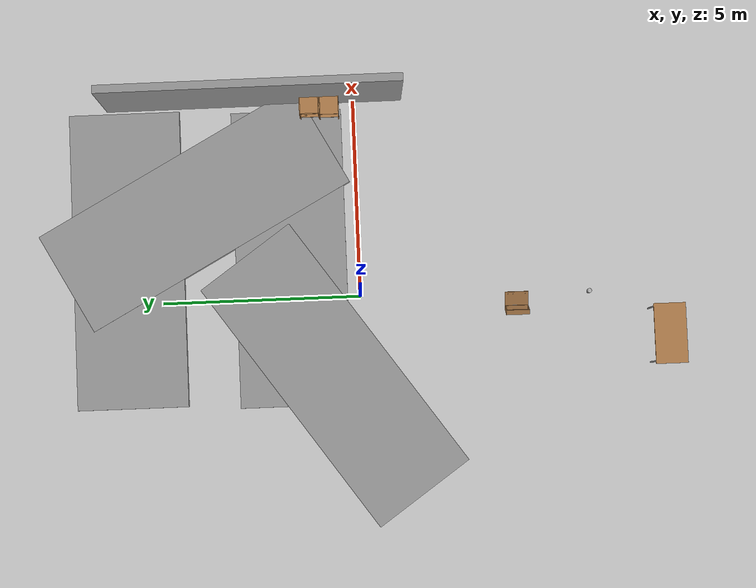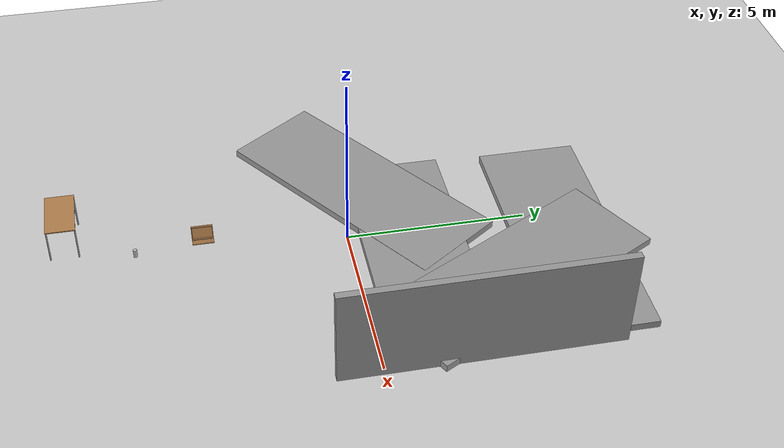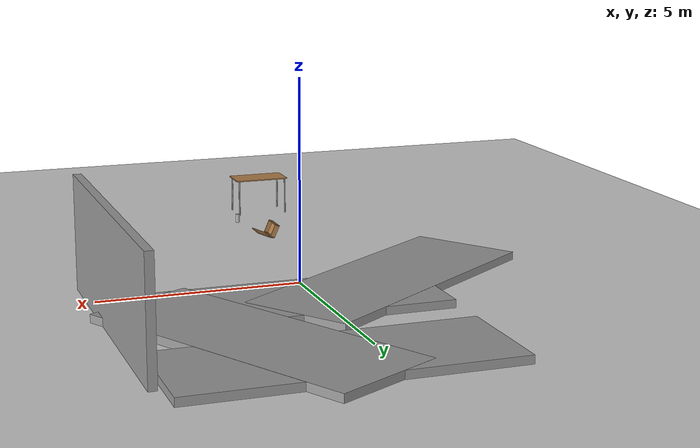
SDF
<sdf version="1.6">
 <world name="default">
  <light name="sun" type="directional">
   <pose>0 0 15 0 -0 0</pose>
   <diffuse>0.8 0.8 0.8 1</diffuse>
   <specular>0.2 0.2 0.2 1</specular>
   <attenuation>
    <range>1000</range>
    <constant>0.9</constant>
    <linear>0.01</linear>
    <quadratic>0.001</quadratic>
   </attenuation>
   <direction>-0.5 0.1 -0.9</direction>
  </light>
  <model name="ground_plane">
   <static>1</static>
   <link name="link">
    <collision name="collision">
     <geometry><plane><normal>0 0 1</normal><size>100 100</size></plane></geometry>
     <surface><friction><ode><mu>100</mu><mu2>50</mu2></ode></friction></surface>
    </collision>
    <visual name="visual">
     <cast_shadows>0</cast_shadows>
     <geometry><plane><normal>0 0 1</normal><size>100 100</size></plane></geometry>
     <material>
      <script><uri>file://media/materials/scripts/gazebo.material</uri><name>Gazebo/Grey</name></script>
     </material>
    </visual>
   </link>
  </model>
  <gravity>0 0 -9.8</gravity>
  <magnetic_field>6e-06 2.3e-05 -4.2e-05</magnetic_field>
  <atmosphere type="adiabatic"/>
  <physics name="default_physics" default="0" type="ode">
   <max_step_size>0.001</max_step_size>
   <real_time_factor>1</real_time_factor>
   <real_time_update_rate>1000</real_time_update_rate>
  </physics>
  <scene><ambient>0.4 0.4 0.4 1</ambient><background>0.7 0.7 0.7 1</background><shadows>1</shadows></scene>
  <spherical_coordinates>
   <surface_model>EARTH_WGS84</surface_model>
   <latitude_deg>0</latitude_deg>
   <longitude_deg>0</longitude_deg>
   <elevation>0</elevation>
   <heading_deg>0</heading_deg>
  </spherical_coordinates>
  <model name="beer">
   <link name="link">
    <pose>0 0 0.115 0 -0 0</pose>
    <inertial>
     <mass>0.39</mass>
     <inertia><ixx>0.00058</ixx><ixy>0</ixy><ixz>0</ixz><iyy>0.00058</iyy><iyz>0</iyz><izz>0.00019</izz></inertia>
    </inertial>
    <collision name="collision">
     <geometry><cylinder><radius>0.055</radius><length>0.23</length></cylinder></geometry>
    </collision>
    <visual name="visual">
     <geometry><cylinder><radius>0.055</radius><length>0.23</length></cylinder></geometry>
     <material>
      <script>
       <uri>model://beer/materials/scripts</uri>
       <uri>model://beer/materials/textures</uri>
       <name>Beer/Diffuse</name>
      </script>
     </material>
    </visual>
   </link>
   <pose>-0.097689 -5.77367 0.189801 1.6e-05 -4e-06 -0.000374</pose>
  </model>
  <model name="table">
   <static>1</static>
   <link name="link">
    <collision name="surface">
     <pose>0 0 1 0 -0 0</pose>
     <geometry><box><size>1.5 0.8 0.03</size></box></geometry>
     <surface><friction><ode><mu>0.6</mu><mu2>0.6</mu2></ode></friction></surface>
    </collision>
    <visual name="visual1">
     <pose>0 0 1 0 -0 0</pose>
     <geometry><box><size>1.5 0.8 0.03</size></box></geometry>
     <material>
      <script><uri>file://media/materials/scripts/gazebo.material</uri><name>Gazebo/Wood</name></script>
     </material>
    </visual>
    <collision name="front_left_leg">
     <pose>0.68 0.38 0.5 0 -0 0</pose>
     <geometry><cylinder><radius>0.02</radius><length>1</length></cylinder></geometry>
    </collision>
    <visual name="front_left_leg">
     <pose>0.68 0.38 0.5 0 -0 0</pose>
     <geometry><cylinder><radius>0.02</radius><length>1</length></cylinder></geometry>
     <material>
      <script><uri>file://media/materials/scripts/gazebo.material</uri><name>Gazebo/Grey</name></script>
     </material>
    </visual>
    <collision name="front_right_leg">
     <pose>0.68 -0.38 0.5 0 -0 0</pose>
     <geometry><cylinder><radius>0.02</radius><length>1</length></cylinder></geometry>
    </collision>
    <visual name="front_right_leg">
     <pose>0.68 -0.38 0.5 0 -0 0</pose>
     <geometry><cylinder><radius>0.02</radius><length>1</length></cylinder></geometry>
     <material>
      <script><uri>file://media/materials/scripts/gazebo.material</uri><name>Gazebo/Grey</name></script>
     </material>
    </visual>
    <collision name="back_right_leg">
     <pose>-0.68 -0.38 0.5 0 -0 0</pose>
     <geometry><cylinder><radius>0.02</radius><length>1</length></cylinder></geometry>
    </collision>
    <visual name="back_right_leg">
     <pose>-0.68 -0.38 0.5 0 -0 0</pose>
     <geometry><cylinder><radius>0.02</radius><length>1</length></cylinder></geometry>
     <material>
      <script><uri>file://media/materials/scripts/gazebo.material</uri><name>Gazebo/Grey</name></script>
     </material>
    </visual>
    <collision name="back_left_leg">
     <pose>-0.68 0.38 0.5 0 -0 0</pose>
     <geometry><cylinder><radius>0.02</radius><length>1</length></cylinder></geometry>
    </collision>
    <visual name="back_left_leg">
     <pose>-0.68 0.38 0.5 0 -0 0</pose>
     <geometry><cylinder><radius>0.02</radius><length>1</length></cylinder></geometry>
     <material>
      <script><uri>file://media/materials/scripts/gazebo.material</uri><name>Gazebo/Grey</name></script>
     </material>
    </visual>
   </link>
   <pose>-1.26954 -7.66103 0 0 -0 0</pose>
  </model>
  <model name="wooden_case">
   <link name="base">
    <pose>0 0 0.024 0 -0 0</pose>
    <inertial>
     <pose>-0.022184 0 0.171592 0 -0 0</pose>
     <mass>3.96264</mass>
     <inertia>
      <ixx>0.213536</ixx>
      <ixy>0</ixy>
      <ixz>0.000779377</ixz>
      <iyy>0.0708943</iyy>
      <iyz>0</iyz>
      <izz>0.154604</izz>
     </inertia>
    </inertial>
    <collision name="collision_back">
     <pose>-0.053975 0 0.1778 0 -0 0</pose>
     <geometry><box><size>0.01905 0.5461 0.3175</size></box></geometry>
     <surface>
      <contact>
       <poissons_ratio>0.347</poissons_ratio>
       <elastic_modulus>8.8e+09</elastic_modulus>
       <ode><kp>100000</kp><kd>100</kd><max_vel>100</max_vel><min_depth>0.001</min_depth></ode>
      </contact>
      <friction>
       <torsional>
        <coefficient>1</coefficient>
        <use_patch_radius>0</use_patch_radius>
        <surface_radius>0.01</surface_radius>
       </torsional>
      </friction>
     </surface>
    </collision>
    <visual name="visual_back">
     <pose>-0.053975 0 0.1778 0 -0 0</pose>
     <geometry><box><size>0.01905 0.5461 0.3175</size></box></geometry>
     <material>
      <script><uri>file://media/materials/scripts/gazebo.material</uri><name>Gazebo/Wood</name></script>
     </material>
    </visual>
    <collision name="collision_bottom">
     <pose>0 0 0.009525 0 -0 0</pose>
     <geometry><box><size>0.127 0.5842 0.01905</size></box></geometry>
     <surface>
      <contact>
       <poissons_ratio>0.347</poissons_ratio>
       <elastic_modulus>8.8e+09</elastic_modulus>
       <ode><kp>100000</kp><kd>100</kd><max_vel>100</max_vel><min_depth>0.001</min_depth></ode>
      </contact>
      <friction>
       <torsional>
        <coefficient>1</coefficient>
        <use_patch_radius>0</use_patch_radius>
        <surface_radius>0.01</surface_radius>
       </torsional>
      </friction>
     </surface>
    </collision>
    <visual name="visual_bottom">
     <pose>0 0 0.009525 0 -0 0</pose>
     <geometry><box><size>0.127 0.5842 0.01905</size></box></geometry>
     <material>
      <script><uri>file://media/materials/scripts/gazebo.material</uri><name>Gazebo/Wood</name></script>
     </material>
    </visual>
    <collision name="collision_top">
     <pose>0 0 0.346075 0 -0 0</pose>
     <geometry><box><size>0.127 0.5842 0.01905</size></box></geometry>
     <surface>
      <contact>
       <poissons_ratio>0.347</poissons_ratio>
       <elastic_modulus>8.8e+09</elastic_modulus>
       <ode><kp>100000</kp><kd>100</kd><max_vel>100</max_vel><min_depth>0.001</min_depth></ode>
      </contact>
      <friction>
       <torsional>
        <coefficient>1</coefficient>
        <use_patch_radius>0</use_patch_radius>
        <surface_radius>0.01</surface_radius>
       </torsional>
      </friction>
     </surface>
    </collision>
    <visual name="visual_top">
     <pose>0 0 0.346075 0 -0 0</pose>
     <geometry><box><size>0.127 0.5842 0.01905</size></box></geometry>
     <material>
      <script><uri>file://media/materials/scripts/gazebo.material</uri><name>Gazebo/Wood</name></script>
     </material>
    </visual>
    <collision name="collision_left">
     <pose>0 -0.282575 0.1778 0 -0 0</pose>
     <geometry><box><size>0.127 0.01905 0.3175</size></box></geometry>
     <surface>
      <contact>
       <poissons_ratio>0.347</poissons_ratio>
       <elastic_modulus>8.8e+09</elastic_modulus>
       <ode><kp>100000</kp><kd>100</kd><max_vel>100</max_vel><min_depth>0.001</min_depth></ode>
      </contact>
      <friction>
       <torsional>
        <coefficient>1</coefficient>
        <use_patch_radius>0</use_patch_radius>
        <surface_radius>0.01</surface_radius>
       </torsional>
      </friction>
     </surface>
    </collision>
    <visual name="visual_left">
     <pose>0 -0.282575 0.1778 0 -0 0</pose>
     <geometry><box><size>0.127 0.01905 0.3175</size></box></geometry>
     <material>
      <script><uri>file://media/materials/scripts/gazebo.material</uri><name>Gazebo/Wood</name></script>
     </material>
    </visual>
    <collision name="collision_right">
     <pose>0 0.282575 0.1778 0 -0 0</pose>
     <geometry><box><size>0.127 0.01905 0.3175</size></box></geometry>
     <surface>
      <contact>
       <poissons_ratio>0.347</poissons_ratio>
       <elastic_modulus>8.8e+09</elastic_modulus>
       <ode><kp>100000</kp><kd>100</kd><max_vel>100</max_vel><min_depth>0.001</min_depth></ode>
      </contact>
      <friction>
       <torsional>
        <coefficient>1</coefficient>
        <use_patch_radius>0</use_patch_radius>
        <surface_radius>0.01</surface_radius>
       </torsional>
      </friction>
     </surface>
    </collision>
    <visual name="visual_right">
     <pose>0 0.282575 0.1778 0 -0 0</pose>
     <geometry><box><size>0.127 0.01905 0.3175</size></box></geometry>
     <material>
      <script><uri>file://media/materials/scripts/gazebo.material</uri><name>Gazebo/Wood</name></script>
     </material>
    </visual>
    <collision name="collision_block_left">
     <pose>0.0095 -0.2151 -0.012 0 -0 0</pose>
     <geometry><box><size>0.108 0.05 0.024</size></box></geometry>
     <surface>
      <contact>
       <poissons_ratio>0.347</poissons_ratio>
       <elastic_modulus>8.8e+09</elastic_modulus>
       <ode><kp>100000</kp><kd>100</kd><max_vel>100</max_vel><min_depth>0.001</min_depth></ode>
      </contact>
      <friction>
       <torsional>
        <coefficient>1</coefficient>
        <use_patch_radius>0</use_patch_radius>
        <surface_radius>0.01</surface_radius>
       </torsional>
      </friction>
     </surface>
    </collision>
    <visual name="visual_block_left">
     <pose>0.0095 -0.2151 -0.012 0 -0 0</pose>
     <geometry><box><size>0.108 0.05 0.024</size></box></geometry>
     <material>
      <script><uri>file://media/materials/scripts/gazebo.material</uri><name>Gazebo/Wood</name></script>
     </material>
    </visual>
    <collision name="collision_block_right">
     <pose>0.0095 0.2151 -0.012 0 -0 0</pose>
     <geometry><box><size>0.108 0.05 0.024</size></box></geometry>
     <surface>
      <contact>
       <poissons_ratio>0.347</poissons_ratio>
       <elastic_modulus>8.8e+09</elastic_modulus>
       <ode><kp>100000</kp><kd>100</kd><max_vel>100</max_vel><min_depth>0.001</min_depth></ode>
      </contact>
      <friction>
       <torsional>
        <coefficient>1</coefficient>
        <use_patch_radius>0</use_patch_radius>
        <surface_radius>0.01</surface_radius>
       </torsional>
      </friction>
     </surface>
    </collision>
    <visual name="visual_block_right">
     <pose>0.0095 0.2151 -0.012 0 -0 0</pose>
     <geometry><box><size>0.108 0.05 0.024</size></box></geometry>
     <material>
      <script><uri>file://media/materials/scripts/gazebo.material</uri><name>Gazebo/Wood</name></script>
     </material>
    </visual>
   </link>
   <link name="lid">
    <pose>0.243775 0 0.009525 0 -0 0</pose>
    <inertial>
     <mass>1.97874</mass>
     <inertia>
      <ixx>0.0563367</ixx>
      <ixy>0</ixy>
      <ixz>0</ixz>
      <iyy>0.020911</iyy>
      <iyz>0</iyz>
      <izz>0.0771281</izz>
     </inertia>
    </inertial>
    <collision name="collision">
     <geometry><box><size>0.3556 0.5842 0.01905</size></box></geometry>
     <surface>
      <contact>
       <poissons_ratio>0.347</poissons_ratio>
       <elastic_modulus>8.8e+09</elastic_modulus>
       <ode><kp>100000</kp><kd>100</kd><max_vel>100</max_vel><min_depth>0.001</min_depth></ode>
      </contact>
      <friction>
       <torsional>
        <coefficient>1</coefficient>
        <use_patch_radius>0</use_patch_radius>
        <surface_radius>0.01</surface_radius>
       </torsional>
      </friction>
     </surface>
    </collision>
    <visual name="visual">
     <geometry><box><size>0.3556 0.5842 0.01905</size></box></geometry>
     <material>
      <script><uri>file://media/materials/scripts/gazebo.material</uri><name>Gazebo/Wood</name></script>
     </material>
    </visual>
    <visual name="tee_nut_1">
     <pose>0.122 -0.216 0 0 -0 0</pose>
     <geometry><cylinder><radius>0.00635</radius><length>0.0192405</length></cylinder></geometry>
     <material>
      <script><uri>file://media/materials/scripts/gazebo.material</uri><name>Gazebo/Grey</name></script>
     </material>
    </visual>
    <visual name="tee_nut_2">
     <pose>0.122 -0.088 0 0 -0 0</pose>
     <geometry><cylinder><radius>0.00635</radius><length>0.0192405</length></cylinder></geometry>
     <material>
      <script><uri>file://media/materials/scripts/gazebo.material</uri><name>Gazebo/Grey</name></script>
     </material>
    </visual>
    <visual name="tee_nut_3">
     <pose>0.122 0.088 0 0 -0 0</pose>
     <geometry><cylinder><radius>0.00635</radius><length>0.0192405</length></cylinder></geometry>
     <material>
      <script><uri>file://media/materials/scripts/gazebo.material</uri><name>Gazebo/Grey</name></script>
     </material>
    </visual>
    <visual name="tee_nut_4">
     <pose>0.122 0.216 0 0 -0 0</pose>
     <geometry><cylinder><radius>0.00635</radius><length>0.0192405</length></cylinder></geometry>
     <material>
      <script><uri>file://media/materials/scripts/gazebo.material</uri><name>Gazebo/Grey</name></script>
     </material>
    </visual>
   </link>
   <joint name="lid_hinge" type="revolute">
    <pose>-0.1778 0 0.01905 0 -0 0</pose>
    <parent>base</parent>
    <child>lid</child>
    <axis>
     <xyz>0 1 0</xyz>
     <limit><upper>0.523599</upper><lower>-1.5708</lower></limit>
     <use_parent_model_frame>0</use_parent_model_frame>
     <dynamics><spring_reference>0</spring_reference><spring_stiffness>0</spring_stiffness></dynamics>
    </axis>
   </joint>
   <pose>-0.432663 -3.93313 0.206276 0 -0.406708 -0.004144</pose>
  </model>
  <model name="cabinet">
   <static>1</static>
   <link name="cabinet_bottom_plate">
    <inertial>
     <pose>0 0 -1 0 -0 0</pose>
     <inertia><ixx>2.05</ixx><ixy>0</ixy><ixz>0</ixz><iyy>2.05</iyy><iyz>0</iyz><izz>2.05</izz></inertia>
     <mass>25</mass>
    </inertial>
    <collision name="cabinet_bottom_plate_geom">
     <pose>0 0 0.01 0 -0 0</pose>
     <geometry><box><size>0.45 0.45 0.02</size></box></geometry>
    </collision>
    <visual name="cabinet_bottom_plate_geom_visual">
     <pose>0 0 0.01 0 -0 0</pose>
     <geometry><box><size>0.45 0.45 0.02</size></box></geometry>
     <material>
      <script><uri>file://media/materials/scripts/gazebo.material</uri><name>Gazebo/Wood</name></script>
     </material>
    </visual>
    <collision name="cabinet_bottom_plate_geom_cabinet_back_plate">
     <pose>0.235 0 0.51 0 -0 0</pose>
     <geometry><box><size>0.02 0.45 1.02</size></box></geometry>
    </collision>
    <visual name="cabinet_bottom_plate_geom_cabinet_back_plate_visual">
     <pose>0.235 0 0.51 0 -0 0</pose>
     <geometry><box><size>0.02 0.45 1.02</size></box></geometry>
     <material>
      <script><uri>file://media/materials/scripts/gazebo.material</uri><name>Gazebo/Wood</name></script>
     </material>
    </visual>
    <collision name="cabinet_bottom_plate_geom_cabinet_left_plate">
     <pose>0 0.235 0.51 0 -0 0</pose>
     <geometry><box><size>0.45 0.02 1.02</size></box></geometry>
    </collision>
    <visual name="cabinet_bottom_plate_geom_cabinet_left_plate_visual">
     <pose>0 0.235 0.51 0 -0 0</pose>
     <geometry><box><size>0.45 0.02 1.02</size></box></geometry>
     <material>
      <script><uri>file://media/materials/scripts/gazebo.material</uri><name>Gazebo/Wood</name></script>
     </material>
    </visual>
    <collision name="cabinet_bottom_plate_geom_cabinet_middle_plate">
     <pose>0 0 0.51 0 -0 0</pose>
     <geometry><box><size>0.45 0.45 0.02</size></box></geometry>
    </collision>
    <visual name="cabinet_bottom_plate_geom_cabinet_middle_plate_visual">
     <pose>0 0 0.51 0 -0 0</pose>
     <geometry><box><size>0.45 0.45 0.02</size></box></geometry>
     <material>
      <script><uri>file://media/materials/scripts/gazebo.material</uri><name>Gazebo/Wood</name></script>
     </material>
    </visual>
    <collision name="cabinet_bottom_plate_geom_cabinet_right_plate">
     <pose>0 -0.235 0.51 0 -0 0</pose>
     <geometry><box><size>0.45 0.02 1.02</size></box></geometry>
    </collision>
    <visual name="cabinet_bottom_plate_geom_cabinet_right_plate_visual">
     <pose>0 -0.235 0.51 0 -0 0</pose>
     <geometry><box><size>0.45 0.02 1.02</size></box></geometry>
     <material>
      <script><uri>file://media/materials/scripts/gazebo.material</uri><name>Gazebo/Wood</name></script>
     </material>
    </visual>
    <collision name="cabinet_bottom_plate_geom_cabinet_top_plate">
     <pose>0 0 1.01 0 -0 0</pose>
     <geometry><box><size>0.45 0.45 0.02</size></box></geometry>
    </collision>
    <visual name="cabinet_bottom_plate_geom_cabinet_top_plate_visual">
     <pose>0 0 1.01 0 -0 0</pose>
     <geometry><box><size>0.45 0.45 0.02</size></box></geometry>
     <material>
      <script><uri>file://media/materials/scripts/gazebo.material</uri><name>Gazebo/Wood</name></script>
     </material>
    </visual>
   </link>
   <pose>4.80674 1.10835 0 0 -0 0</pose>
  </model>
  <model name="cabinet_0">
   <static>1</static>
   <link name="cabinet_bottom_plate">
    <inertial>
     <pose>0 0 -1 0 -0 0</pose>
     <inertia><ixx>2.05</ixx><ixy>0</ixy><ixz>0</ixz><iyy>2.05</iyy><iyz>0</iyz><izz>2.05</izz></inertia>
     <mass>25</mass>
    </inertial>
    <collision name="cabinet_bottom_plate_geom">
     <pose>0 0 0.01 0 -0 0</pose>
     <geometry><box><size>0.45 0.45 0.02</size></box></geometry>
    </collision>
    <visual name="cabinet_bottom_plate_geom_visual">
     <pose>0 0 0.01 0 -0 0</pose>
     <geometry><box><size>0.45 0.45 0.02</size></box></geometry>
     <material>
      <script><uri>file://media/materials/scripts/gazebo.material</uri><name>Gazebo/Wood</name></script>
     </material>
    </visual>
    <collision name="cabinet_bottom_plate_geom_cabinet_back_plate">
     <pose>0.235 0 0.51 0 -0 0</pose>
     <geometry><box><size>0.02 0.45 1.02</size></box></geometry>
    </collision>
    <visual name="cabinet_bottom_plate_geom_cabinet_back_plate_visual">
     <pose>0.235 0 0.51 0 -0 0</pose>
     <geometry><box><size>0.02 0.45 1.02</size></box></geometry>
     <material>
      <script><uri>file://media/materials/scripts/gazebo.material</uri><name>Gazebo/Wood</name></script>
     </material>
    </visual>
    <collision name="cabinet_bottom_plate_geom_cabinet_left_plate">
     <pose>0 0.235 0.51 0 -0 0</pose>
     <geometry><box><size>0.45 0.02 1.02</size></box></geometry>
    </collision>
    <visual name="cabinet_bottom_plate_geom_cabinet_left_plate_visual">
     <pose>0 0.235 0.51 0 -0 0</pose>
     <geometry><box><size>0.45 0.02 1.02</size></box></geometry>
     <material>
      <script><uri>file://media/materials/scripts/gazebo.material</uri><name>Gazebo/Wood</name></script>
     </material>
    </visual>
    <collision name="cabinet_bottom_plate_geom_cabinet_middle_plate">
     <pose>0 0 0.51 0 -0 0</pose>
     <geometry><box><size>0.45 0.45 0.02</size></box></geometry>
    </collision>
    <visual name="cabinet_bottom_plate_geom_cabinet_middle_plate_visual">
     <pose>0 0 0.51 0 -0 0</pose>
     <geometry><box><size>0.45 0.45 0.02</size></box></geometry>
     <material>
      <script><uri>file://media/materials/scripts/gazebo.material</uri><name>Gazebo/Wood</name></script>
     </material>
    </visual>
    <collision name="cabinet_bottom_plate_geom_cabinet_right_plate">
     <pose>0 -0.235 0.51 0 -0 0</pose>
     <geometry><box><size>0.45 0.02 1.02</size></box></geometry>
    </collision>
    <visual name="cabinet_bottom_plate_geom_cabinet_right_plate_visual">
     <pose>0 -0.235 0.51 0 -0 0</pose>
     <geometry><box><size>0.45 0.02 1.02</size></box></geometry>
     <material>
      <script><uri>file://media/materials/scripts/gazebo.material</uri><name>Gazebo/Wood</name></script>
     </material>
    </visual>
    <collision name="cabinet_bottom_plate_geom_cabinet_top_plate">
     <pose>0 0 1.01 0 -0 0</pose>
     <geometry><box><size>0.45 0.45 0.02</size></box></geometry>
    </collision>
    <visual name="cabinet_bottom_plate_geom_cabinet_top_plate_visual">
     <pose>0 0 1.01 0 -0 0</pose>
     <geometry><box><size>0.45 0.45 0.02</size></box></geometry>
     <material>
      <script><uri>file://media/materials/scripts/gazebo.material</uri><name>Gazebo/Wood</name></script>
     </material>
    </visual>
   </link>
   <pose>4.78509 1.0915 0 0 -0 0</pose>
  </model>
  <model name="cabinet_1">
   <static>1</static>
   <link name="cabinet_bottom_plate">
    <inertial>
     <pose>0 0 -1 0 -0 0</pose>
     <inertia><ixx>2.05</ixx><ixy>0</ixy><ixz>0</ixz><iyy>2.05</iyy><iyz>0</iyz><izz>2.05</izz></inertia>
     <mass>25</mass>
    </inertial>
    <collision name="cabinet_bottom_plate_geom">
     <pose>0 0 0.01 0 -0 0</pose>
     <geometry><box><size>0.45 0.45 0.02</size></box></geometry>
    </collision>
    <visual name="cabinet_bottom_plate_geom_visual">
     <pose>0 0 0.01 0 -0 0</pose>
     <geometry><box><size>0.45 0.45 0.02</size></box></geometry>
     <material>
      <script><uri>file://media/materials/scripts/gazebo.material</uri><name>Gazebo/Wood</name></script>
     </material>
    </visual>
    <collision name="cabinet_bottom_plate_geom_cabinet_back_plate">
     <pose>0.235 0 0.51 0 -0 0</pose>
     <geometry><box><size>0.02 0.45 1.02</size></box></geometry>
    </collision>
    <visual name="cabinet_bottom_plate_geom_cabinet_back_plate_visual">
     <pose>0.235 0 0.51 0 -0 0</pose>
     <geometry><box><size>0.02 0.45 1.02</size></box></geometry>
     <material>
      <script><uri>file://media/materials/scripts/gazebo.material</uri><name>Gazebo/Wood</name></script>
     </material>
    </visual>
    <collision name="cabinet_bottom_plate_geom_cabinet_left_plate">
     <pose>0 0.235 0.51 0 -0 0</pose>
     <geometry><box><size>0.45 0.02 1.02</size></box></geometry>
    </collision>
    <visual name="cabinet_bottom_plate_geom_cabinet_left_plate_visual">
     <pose>0 0.235 0.51 0 -0 0</pose>
     <geometry><box><size>0.45 0.02 1.02</size></box></geometry>
     <material>
      <script><uri>file://media/materials/scripts/gazebo.material</uri><name>Gazebo/Wood</name></script>
     </material>
    </visual>
    <collision name="cabinet_bottom_plate_geom_cabinet_middle_plate">
     <pose>0 0 0.51 0 -0 0</pose>
     <geometry><box><size>0.45 0.45 0.02</size></box></geometry>
    </collision>
    <visual name="cabinet_bottom_plate_geom_cabinet_middle_plate_visual">
     <pose>0 0 0.51 0 -0 0</pose>
     <geometry><box><size>0.45 0.45 0.02</size></box></geometry>
     <material>
      <script><uri>file://media/materials/scripts/gazebo.material</uri><name>Gazebo/Wood</name></script>
     </material>
    </visual>
    <collision name="cabinet_bottom_plate_geom_cabinet_right_plate">
     <pose>0 -0.235 0.51 0 -0 0</pose>
     <geometry><box><size>0.45 0.02 1.02</size></box></geometry>
    </collision>
    <visual name="cabinet_bottom_plate_geom_cabinet_right_plate_visual">
     <pose>0 -0.235 0.51 0 -0 0</pose>
     <geometry><box><size>0.45 0.02 1.02</size></box></geometry>
     <material>
      <script><uri>file://media/materials/scripts/gazebo.material</uri><name>Gazebo/Wood</name></script>
     </material>
    </visual>
    <collision name="cabinet_bottom_plate_geom_cabinet_top_plate">
     <pose>0 0 1.01 0 -0 0</pose>
     <geometry><box><size>0.45 0.45 0.02</size></box></geometry>
    </collision>
    <visual name="cabinet_bottom_plate_geom_cabinet_top_plate_visual">
     <pose>0 0 1.01 0 -0 0</pose>
     <geometry><box><size>0.45 0.45 0.02</size></box></geometry>
     <material>
      <script><uri>file://media/materials/scripts/gazebo.material</uri><name>Gazebo/Wood</name></script>
     </material>
    </visual>
   </link>
   <pose>4.76449 0.606746 0 0 -0 0</pose>
  </model>
  <model name="grey_wall_0">
   <static>1</static>
   <link name="link">
    <pose>0 0 1.4 0 -0 0</pose>
    <collision name="collision"><geometry><box><size>7.5 0.2 2.8</size></box></geometry></collision>
    <visual name="visual">
     <cast_shadows>0</cast_shadows>
     <geometry><box><size>7.5 0.2 2.8</size></box></geometry>
     <material>
      <script>
       <uri>model://grey_wall/materials/scripts</uri>
       <uri>model://grey_wall/materials/textures</uri>
       <name>vrc/grey_wall</name>
      </script>
     </material>
    </visual>
   </link>
   <pose>1.03429 0.31847 0.097741 -1.57179 0 0</pose>
  </model>
  <model name="grey_wall">
   <static>1</static>
   <link name="link">
    <pose>0 0 1.4 0 -0 0</pose>
    <collision name="collision"><geometry><box><size>7.5 0.2 2.8</size></box></geometry></collision>
    <visual name="visual">
     <cast_shadows>0</cast_shadows>
     <geometry><box><size>7.5 0.2 2.8</size></box></geometry>
     <material>
      <script>
       <uri>model://grey_wall/materials/scripts</uri>
       <uri>model://grey_wall/materials/textures</uri>
       <name>vrc/grey_wall</name>
      </script>
     </material>
    </visual>
   </link>
   <pose>5.08017 2.52559 0 0 -0 1.5732</pose>
  </model>
  <model name="grey_wall_0_clone">
   <static>1</static>
   <link name="link">
    <pose>0 0 1.4 0 -0 0</pose>
    <collision name="collision"><geometry><box><size>7.5 0.2 2.8</size></box></geometry></collision>
    <visual name="visual">
     <cast_shadows>0</cast_shadows>
     <geometry><box><size>7.5 0.2 2.8</size></box></geometry>
     <material>
      <script>
       <uri>model://grey_wall/materials/scripts</uri>
       <uri>model://grey_wall/materials/textures</uri>
       <name>vrc/grey_wall</name>
      </script>
     </material>
    </visual>
   </link>
   <pose>1.13054 4.42792 0.092669 -1.57179 0 0</pose>
  </model>
  <model name="grey_wall_0_clone_0">
   <static>1</static>
   <link name="link">
    <pose>0 0 1.4 0 -0 0</pose>
    <collision name="collision"><geometry><box><size>7.5 0.2 2.8</size></box></geometry></collision>
    <visual name="visual">
     <cast_shadows>0</cast_shadows>
     <geometry><box><size>7.5 0.2 2.8</size></box></geometry>
     <material>
      <script>
       <uri>model://grey_wall/materials/scripts</uri>
       <uri>model://grey_wall/materials/textures</uri>
       <name>vrc/grey_wall</name>
      </script>
     </material>
    </visual>
   </link>
   <pose>-1.15497 -0.413966 0.100948 -1.57161 0.000572 0.613143</pose>
  </model>
  <model name="grey_wall_0_clone_0_clone">
   <static>1</static>
   <link name="link">
    <pose>0 0 1.4 0 -0 0</pose>
    <collision name="collision"><geometry><box><size>7.5 0.2 2.8</size></box></geometry></collision>
    <visual name="visual">
     <cast_shadows>0</cast_shadows>
     <geometry><box><size>7.5 0.2 2.8</size></box></geometry>
     <material>
      <script>
       <uri>model://grey_wall/materials/scripts</uri>
       <uri>model://grey_wall/materials/textures</uri>
       <name>vrc/grey_wall</name>
      </script>
     </material>
    </visual>
   </link>
   <pose>3.60145 4.79004 0.094635 -1.57032 0.000875 2.06759</pose>
  </model>
 </world>
</sdf>
